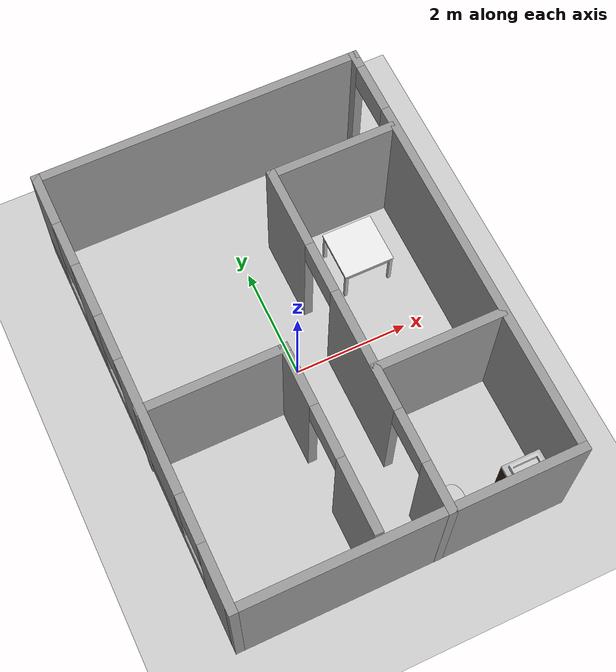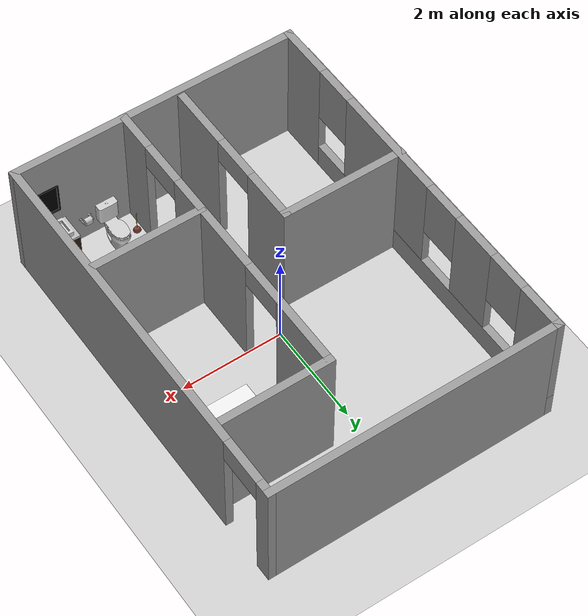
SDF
<sdf version="1.6">
 <world name="default">
  <light name="sun" type="directional">
   <pose>0 0 10 0 -0 0</pose>
   <diffuse>0.8 0.8 0.8 1</diffuse>
   <specular>0.1 0.1 0.1 1</specular>
   <attenuation>
    <range>1000</range>
    <constant>0.9</constant>
    <linear>0.01</linear>
    <quadratic>0.001</quadratic>
   </attenuation>
   <direction>-0.5 0.5 -1</direction>
  </light>
  <model name="ground_plane">
   <static>1</static>
   <link name="link">
    <collision name="collision">
     <geometry><plane><normal>0 0 1</normal><size>100 100</size></plane></geometry>
     <surface><friction><ode><mu>100</mu><mu2>50</mu2></ode></friction></surface>
    </collision>
    <visual name="visual">
     <cast_shadows>0</cast_shadows>
     <geometry><plane><normal>0 0 1</normal><size>100 100</size></plane></geometry>
     <material>
      <script><uri>file://media/materials/scripts/gazebo.material</uri><name>Gazebo/Grey</name></script>
     </material>
    </visual>
   </link>
  </model>
  <gravity>0 0 -9.8</gravity>
  <magnetic_field>6e-06 2.3e-05 -4.2e-05</magnetic_field>
  <atmosphere type="adiabatic"/>
  <physics name="default_physics" default="0" type="ode">
   <max_step_size>0.001</max_step_size>
   <real_time_factor>1</real_time_factor>
   <real_time_update_rate>1000</real_time_update_rate>
  </physics>
  <scene><ambient>0.4 0.4 0.4 1</ambient><background>0.7 0.7 0.7 1</background><shadows>1</shadows></scene>
  <spherical_coordinates>
   <surface_model>EARTH_WGS84</surface_model>
   <latitude_deg>0</latitude_deg>
   <longitude_deg>0</longitude_deg>
   <elevation>0</elevation>
   <heading_deg>0</heading_deg>
  </spherical_coordinates>
  <model name="test_apartment">
   <link name="Wall_0">
    <collision name="Wall_0_Collision">
     <geometry><box><size>5.75 0.15 2.5</size></box></geometry>
     <pose>0 0 1.25 0 -0 0</pose>
    </collision>
    <visual name="Wall_0_Visual">
     <pose>0 0 1.25 0 -0 0</pose>
     <geometry><box><size>5.75 0.15 2.5</size></box></geometry>
     <material>
      <script><uri>file://media/materials/scripts/gazebo.material</uri><name>Gazebo/Grey</name></script>
      <ambient>1 1 1 1</ambient>
     </material>
    </visual>
    <pose>0.010057 3.80146 0 0 -0 0</pose>
   </link>
   <link name="Wall_1">
    <pose>2.81006 0.001465 0 0 0 -1.5708</pose>
    <visual name="Wall_1_Visual_0">
     <pose>-3.71051 0 1.25 0 -0 0</pose>
     <geometry><box><size>0.328975 0.15 2.5</size></box></geometry>
     <material>
      <script><uri>file://media/materials/scripts/gazebo.material</uri><name>Gazebo/Grey</name></script>
      <ambient>1 1 1 1</ambient>
     </material>
    </visual>
    <collision name="Wall_1_Collision_0">
     <geometry><box><size>0.328975 0.15 2.5</size></box></geometry>
     <pose>-3.71051 0 1.25 0 -0 0</pose>
    </collision>
    <visual name="Wall_1_Visual_1">
     <pose>0.614488 0 1.25 0 -0 0</pose>
     <geometry><box><size>6.52102 0.15 2.5</size></box></geometry>
     <material>
      <script><uri>file://media/materials/scripts/gazebo.material</uri><name>Gazebo/Grey</name></script>
      <ambient>1 1 1 1</ambient>
     </material>
    </visual>
    <collision name="Wall_1_Collision_1">
     <geometry><box><size>6.52102 0.15 2.5</size></box></geometry>
     <pose>0.614488 0 1.25 0 -0 0</pose>
    </collision>
    <visual name="Wall_1_Visual_2">
     <pose>-3.09603 0 2.25 0 -0 0</pose>
     <geometry><box><size>0.9 0.15 0.5</size></box></geometry>
     <material>
      <script><uri>file://media/materials/scripts/gazebo.material</uri><name>Gazebo/Grey</name></script>
      <ambient>1 1 1 1</ambient>
     </material>
    </visual>
    <collision name="Wall_1_Collision_2">
     <geometry><box><size>0.9 0.15 0.5</size></box></geometry>
     <pose>-3.09603 0 2.25 0 -0 0</pose>
    </collision>
   </link>
   <link name="Wall_11">
    <collision name="Wall_11_Collision">
     <geometry><box><size>2.25 0.15 2.5</size></box></geometry>
     <pose>0 0 1.25 0 -0 0</pose>
    </collision>
    <visual name="Wall_11_Visual">
     <pose>0 0 1.25 0 -0 0</pose>
     <geometry><box><size>2.25 0.15 2.5</size></box></geometry>
     <material>
      <script><uri>file://media/materials/scripts/gazebo.material</uri><name>Gazebo/Grey</name></script>
      <ambient>1 1 1 1</ambient>
     </material>
    </visual>
    <pose>1.69948 -1.38784 0 0 -0 0</pose>
   </link>
   <link name="Wall_2">
    <collision name="Wall_2_Collision">
     <geometry><box><size>5.75 0.15 2.5</size></box></geometry>
     <pose>0 0 1.25 0 -0 0</pose>
    </collision>
    <visual name="Wall_2_Visual">
     <pose>0 0 1.25 0 -0 0</pose>
     <geometry><box><size>5.75 0.15 2.5</size></box></geometry>
     <material>
      <script><uri>file://media/materials/scripts/gazebo.material</uri><name>Gazebo/Grey</name></script>
      <ambient>1 1 1 1</ambient>
     </material>
    </visual>
    <pose>0.010057 -3.79854 0 0 -0 3.14159</pose>
   </link>
   <link name="Wall_3">
    <pose>-2.78994 0.001465 0 0 -0 1.5708</pose>
    <visual name="Wall_3_Visual_0">
     <pose>-3.31488 0 1.25 0 -0 0</pose>
     <geometry><box><size>1.12025 0.15 2.5</size></box></geometry>
     <material>
      <script><uri>file://media/materials/scripts/gazebo.material</uri><name>Gazebo/Grey</name></script>
      <ambient>1 1 1 1</ambient>
     </material>
    </visual>
    <collision name="Wall_3_Collision_0">
     <geometry><box><size>1.12025 0.15 2.5</size></box></geometry>
     <pose>-3.31488 0 1.25 0 -0 0</pose>
    </collision>
    <visual name="Wall_3_Visual_1">
     <pose>0.560124 0 0.25 0 -0 0</pose>
     <geometry><box><size>6.62975 0.15 0.5</size></box></geometry>
     <material>
      <script><uri>file://media/materials/scripts/gazebo.material</uri><name>Gazebo/Grey</name></script>
      <ambient>1 1 1 1</ambient>
     </material>
    </visual>
    <collision name="Wall_3_Collision_1">
     <geometry><box><size>6.62975 0.15 0.5</size></box></geometry>
     <pose>0.560124 0 0.25 0 -0 0</pose>
    </collision>
    <visual name="Wall_3_Visual_2">
     <pose>-0.795951 0 1.5 0 -0 0</pose>
     <geometry><box><size>2.3176 0.15 2</size></box></geometry>
     <material>
      <script><uri>file://media/materials/scripts/gazebo.material</uri><name>Gazebo/Grey</name></script>
      <ambient>1 1 1 1</ambient>
     </material>
    </visual>
    <collision name="Wall_3_Collision_2">
     <geometry><box><size>2.3176 0.15 2</size></box></geometry>
     <pose>-0.795951 0 1.5 0 -0 0</pose>
    </collision>
    <visual name="Wall_3_Visual_3">
     <pose>1.63779 0 1.5 0 -0 0</pose>
     <geometry><box><size>0.949881 0.15 2</size></box></geometry>
     <material>
      <script><uri>file://media/materials/scripts/gazebo.material</uri><name>Gazebo/Grey</name></script>
      <ambient>1 1 1 1</ambient>
     </material>
    </visual>
    <collision name="Wall_3_Collision_3">
     <geometry><box><size>0.949881 0.15 2</size></box></geometry>
     <pose>1.63779 0 1.5 0 -0 0</pose>
    </collision>
    <visual name="Wall_3_Visual_4">
     <pose>3.39387 0 1.5 0 -0 0</pose>
     <geometry><box><size>0.962269 0.15 2</size></box></geometry>
     <material>
      <script><uri>file://media/materials/scripts/gazebo.material</uri><name>Gazebo/Grey</name></script>
      <ambient>1 1 1 1</ambient>
     </material>
    </visual>
    <collision name="Wall_3_Collision_4">
     <geometry><box><size>0.962269 0.15 2</size></box></geometry>
     <pose>3.39387 0 1.5 0 -0 0</pose>
    </collision>
    <visual name="Wall_3_Visual_5">
     <pose>-2.35475 0 1.9 0 -0 0</pose>
     <geometry><box><size>0.8 0.15 1.2</size></box></geometry>
     <material>
      <script><uri>file://media/materials/scripts/gazebo.material</uri><name>Gazebo/Grey</name></script>
      <ambient>1 1 1 1</ambient>
     </material>
    </visual>
    <collision name="Wall_3_Collision_5">
     <geometry><box><size>0.8 0.15 1.2</size></box></geometry>
     <pose>-2.35475 0 1.9 0 -0 0</pose>
    </collision>
    <visual name="Wall_3_Visual_6">
     <pose>0.762851 0 1.9 0 -0 0</pose>
     <geometry><box><size>0.8 0.15 1.2</size></box></geometry>
     <material>
      <script><uri>file://media/materials/scripts/gazebo.material</uri><name>Gazebo/Grey</name></script>
      <ambient>1 1 1 1</ambient>
     </material>
    </visual>
    <collision name="Wall_3_Collision_6">
     <geometry><box><size>0.8 0.15 1.2</size></box></geometry>
     <pose>0.762851 0 1.9 0 -0 0</pose>
    </collision>
    <visual name="Wall_3_Visual_7">
     <pose>2.51273 0 1.9 0 -0 0</pose>
     <geometry><box><size>0.8 0.15 1.2</size></box></geometry>
     <material>
      <script><uri>file://media/materials/scripts/gazebo.material</uri><name>Gazebo/Grey</name></script>
      <ambient>1 1 1 1</ambient>
     </material>
    </visual>
    <collision name="Wall_3_Collision_7">
     <geometry><box><size>0.8 0.15 1.2</size></box></geometry>
     <pose>2.51273 0 1.9 0 -0 0</pose>
    </collision>
   </link>
   <link name="Wall_5">
    <collision name="Wall_5_Collision">
     <geometry><box><size>2.5 0.15 2.5</size></box></geometry>
     <pose>0 0 1.25 0 -0 0</pose>
    </collision>
    <visual name="Wall_5_Visual">
     <pose>0 0 1.25 0 -0 0</pose>
     <geometry><box><size>2.5 0.15 2.5</size></box></geometry>
     <material>
      <script><uri>file://media/materials/scripts/gazebo.material</uri><name>Gazebo/Grey</name></script>
      <ambient>1 1 1 1</ambient>
     </material>
    </visual>
    <pose>-1.63506 -0.522953 0 0 -0 0</pose>
   </link>
   <link name="Wall_6">
    <pose>-0.460057 -2.07295 0 0 0 -1.5708</pose>
    <visual name="Wall_6_Visual_0">
     <pose>-1.07835 0 1.25 0 -0 0</pose>
     <geometry><box><size>1.09329 0.15 2.5</size></box></geometry>
     <material>
      <script><uri>file://media/materials/scripts/gazebo.material</uri><name>Gazebo/Grey</name></script>
      <ambient>1 1 1 1</ambient>
     </material>
    </visual>
    <collision name="Wall_6_Collision_0">
     <geometry><box><size>1.09329 0.15 2.5</size></box></geometry>
     <pose>-1.07835 0 1.25 0 -0 0</pose>
    </collision>
    <visual name="Wall_6_Visual_1">
     <pose>0.996645 0 1.25 0 -0 0</pose>
     <geometry><box><size>1.25671 0.15 2.5</size></box></geometry>
     <material>
      <script><uri>file://media/materials/scripts/gazebo.material</uri><name>Gazebo/Grey</name></script>
      <ambient>1 1 1 1</ambient>
     </material>
    </visual>
    <collision name="Wall_6_Collision_1">
     <geometry><box><size>1.25671 0.15 2.5</size></box></geometry>
     <pose>0.996645 0 1.25 0 -0 0</pose>
    </collision>
    <visual name="Wall_6_Visual_2">
     <pose>-0.081709 0 2.25 0 -0 0</pose>
     <geometry><box><size>0.9 0.15 0.5</size></box></geometry>
     <material>
      <script><uri>file://media/materials/scripts/gazebo.material</uri><name>Gazebo/Grey</name></script>
      <ambient>1 1 1 1</ambient>
     </material>
    </visual>
    <collision name="Wall_6_Collision_2">
     <geometry><box><size>0.9 0.15 0.5</size></box></geometry>
     <pose>-0.081709 0 2.25 0 -0 0</pose>
    </collision>
   </link>
   <link name="Wall_8">
    <pose>0.629364 -0.751465 0 0 -0 1.5708</pose>
    <visual name="Wall_8_Visual_0">
     <pose>-2.69904 0 1.25 0 -0 0</pose>
     <geometry><box><size>0.851928 0.15 2.5</size></box></geometry>
     <material>
      <script><uri>file://media/materials/scripts/gazebo.material</uri><name>Gazebo/Grey</name></script>
      <ambient>1 1 1 1</ambient>
     </material>
    </visual>
    <collision name="Wall_8_Collision_0">
     <geometry><box><size>0.851928 0.15 2.5</size></box></geometry>
     <pose>-2.69904 0 1.25 0 -0 0</pose>
    </collision>
    <visual name="Wall_8_Visual_1">
     <pose>-0.304497 0 1.25 0 -0 0</pose>
     <geometry><box><size>2.13715 0.15 2.5</size></box></geometry>
     <material>
      <script><uri>file://media/materials/scripts/gazebo.material</uri><name>Gazebo/Grey</name></script>
      <ambient>1 1 1 1</ambient>
     </material>
    </visual>
    <collision name="Wall_8_Collision_1">
     <geometry><box><size>2.13715 0.15 2.5</size></box></geometry>
     <pose>-0.304497 0 1.25 0 -0 0</pose>
    </collision>
    <visual name="Wall_8_Visual_2">
     <pose>2.39454 0 1.25 0 -0 0</pose>
     <geometry><box><size>1.46092 0.15 2.5</size></box></geometry>
     <material>
      <script><uri>file://media/materials/scripts/gazebo.material</uri><name>Gazebo/Grey</name></script>
      <ambient>1 1 1 1</ambient>
     </material>
    </visual>
    <collision name="Wall_8_Collision_2">
     <geometry><box><size>1.46092 0.15 2.5</size></box></geometry>
     <pose>2.39454 0 1.25 0 -0 0</pose>
    </collision>
    <visual name="Wall_8_Visual_3">
     <pose>-1.82307 0 2.25 0 -0 0</pose>
     <geometry><box><size>0.9 0.15 0.5</size></box></geometry>
     <material>
      <script><uri>file://media/materials/scripts/gazebo.material</uri><name>Gazebo/Grey</name></script>
      <ambient>1 1 1 1</ambient>
     </material>
    </visual>
    <collision name="Wall_8_Collision_3">
     <geometry><box><size>0.9 0.15 0.5</size></box></geometry>
     <pose>-1.82307 0 2.25 0 -0 0</pose>
    </collision>
    <visual name="Wall_8_Visual_4">
     <pose>1.21408 0 2.25 0 -0 0</pose>
     <geometry><box><size>0.9 0.15 0.5</size></box></geometry>
     <material>
      <script><uri>file://media/materials/scripts/gazebo.material</uri><name>Gazebo/Grey</name></script>
      <ambient>1 1 1 1</ambient>
     </material>
    </visual>
    <collision name="Wall_8_Collision_4">
     <geometry><box><size>0.9 0.15 0.5</size></box></geometry>
     <pose>1.21408 0 2.25 0 -0 0</pose>
    </collision>
   </link>
   <link name="Wall_9">
    <collision name="Wall_9_Collision">
     <geometry><box><size>2.25 0.15 2.5</size></box></geometry>
     <pose>0 0 1.25 0 -0 0</pose>
    </collision>
    <visual name="Wall_9_Visual">
     <pose>0 0 1.25 0 -0 0</pose>
     <geometry><box><size>2.25 0.15 2.5</size></box></geometry>
     <material>
      <script><uri>file://media/materials/scripts/gazebo.material</uri><name>Gazebo/Grey</name></script>
      <ambient>1 1 1 1</ambient>
     </material>
    </visual>
    <pose>1.67936 2.29854 0 0 -0 0</pose>
   </link>
   <static>1</static>
  </model>
  <model name="table_ikea_bjursta">
   <link name="table_top_link">
    <inertial>
     <pose>0 0 0.338095 0 -0 0</pose>
     <mass>21</mass>
     <inertia><ixx>3.4229</ixx><ixy>0</ixy><ixz>0</ixz><iyy>3.4229</iyy><iyz>0</iyz><izz>4.82335</izz></inertia>
    </inertial>
    <visual name="table_top_link_visual">
     <pose>0 0 0.72 0 -0 0</pose>
     <geometry><box><size>0.9 0.9 0.04</size></box></geometry>
     <material>
      <script><name>Gazebo/White</name><uri>file://media/materials/scripts/gazebo.material</uri></script>
      <ambient>1 1 1 1</ambient>
      <diffuse>1 1 1 1</diffuse>
      <specular>0 0 0 1</specular>
      <emissive>0 0 0 1</emissive>
     </material>
    </visual>
    <visual name="table_top_link_fixed_joint_lump__lath_left_back_link_visual_1">
     <pose>-0.43 0 0.665 0 -0 0</pose>
     <geometry><box><size>0.02 0.77 0.07</size></box></geometry>
    </visual>
    <visual name="table_top_link_fixed_joint_lump__lath_left_front_link_visual_2">
     <pose>0.43 0 0.665 0 -0 0</pose>
     <geometry><box><size>0.02 0.77 0.07</size></box></geometry>
    </visual>
    <visual name="table_top_link_fixed_joint_lump__lath_right_back_link_visual_3">
     <pose>0 -0.43 0.665 0 -0 0</pose>
     <geometry><box><size>0.77 0.02 0.07</size></box></geometry>
    </visual>
    <visual name="table_top_link_fixed_joint_lump__lath_right_front_link_visual_4">
     <pose>0 0.43 0.665 0 -0 0</pose>
     <geometry><box><size>0.77 0.02 0.07</size></box></geometry>
    </visual>
    <visual name="table_top_link_fixed_joint_lump__leg_left_back_link_visual_5">
     <pose>-0.4125 0.4125 0.37 0 -0 0</pose>
     <geometry><box><size>0.055 0.055 0.7</size></box></geometry>
    </visual>
    <visual name="table_top_link_fixed_joint_lump__leg_left_front_link_visual_6">
     <pose>0.4125 0.4125 0.37 0 -0 0</pose>
     <geometry><box><size>0.055 0.055 0.7</size></box></geometry>
    </visual>
    <visual name="table_top_link_fixed_joint_lump__leg_right_back_link_visual_7">
     <pose>-0.4125 -0.4125 0.37 0 -0 0</pose>
     <geometry><box><size>0.055 0.055 0.7</size></box></geometry>
    </visual>
    <visual name="table_top_link_fixed_joint_lump__leg_right_front_link_visual_8">
     <pose>0.4125 -0.4125 0.37 0 -0 0</pose>
     <geometry><box><size>0.055 0.055 0.7</size></box></geometry>
    </visual>
    <collision name="table_top_link_collision">
     <pose>0 0 0.72 0 -0 0</pose>
     <geometry><box><size>0.9 0.9 0.04</size></box></geometry>
     <surface>
      <friction>
       <ode><mu>50</mu><mu2>50</mu2><fdir1>0 0 0</fdir1><slip1>0</slip1><slip2>0</slip2></ode>
       <torsional>
        <coefficient>1</coefficient>
        <patch_radius>0</patch_radius>
        <surface_radius>0</surface_radius>
        <use_patch_radius>1</use_patch_radius>
        <ode><slip>0</slip></ode>
       </torsional>
      </friction>
      <bounce><restitution_coefficient>0</restitution_coefficient><threshold>1e+06</threshold></bounce>
      <contact>
       <collide_without_contact>0</collide_without_contact>
       <collide_without_contact_bitmask>1</collide_without_contact_bitmask>
       <collide_bitmask>1</collide_bitmask>
       <ode>
        <soft_cfm>0</soft_cfm>
        <soft_erp>0.2</soft_erp>
        <kp>1e+06</kp>
        <kd>1</kd>
        <max_vel>0.01</max_vel>
        <min_depth>0</min_depth>
       </ode>
       <bullet>
        <split_impulse>1</split_impulse>
        <split_impulse_penetration_threshold>-0.01</split_impulse_penetration_threshold>
        <soft_cfm>0</soft_cfm>
        <soft_erp>0.2</soft_erp>
        <kp>1e+06</kp>
        <kd>1</kd>
       </bullet>
      </contact>
     </surface>
    </collision>
    <collision name="table_top_link_fixed_joint_lump__lath_left_front_link_collision_2">
     <pose>0.43 0 0.665 0 -0 0</pose>
     <geometry><box><size>0.02 0.77 0.07</size></box></geometry>
     <surface>
      <friction>
       <ode><mu>1</mu><mu2>1</mu2><fdir1>0 0 0</fdir1><slip1>0</slip1><slip2>0</slip2></ode>
       <torsional>
        <coefficient>1</coefficient>
        <patch_radius>0</patch_radius>
        <surface_radius>0</surface_radius>
        <use_patch_radius>1</use_patch_radius>
        <ode><slip>0</slip></ode>
       </torsional>
      </friction>
      <bounce><restitution_coefficient>0</restitution_coefficient><threshold>1e+06</threshold></bounce>
      <contact>
       <collide_without_contact>0</collide_without_contact>
       <collide_without_contact_bitmask>1</collide_without_contact_bitmask>
       <collide_bitmask>1</collide_bitmask>
       <ode>
        <soft_cfm>0</soft_cfm>
        <soft_erp>0.2</soft_erp>
        <kp>1e+13</kp>
        <kd>1</kd>
        <max_vel>0.01</max_vel>
        <min_depth>0</min_depth>
       </ode>
       <bullet>
        <split_impulse>1</split_impulse>
        <split_impulse_penetration_threshold>-0.01</split_impulse_penetration_threshold>
        <soft_cfm>0</soft_cfm>
        <soft_erp>0.2</soft_erp>
        <kp>1e+13</kp>
        <kd>1</kd>
       </bullet>
      </contact>
     </surface>
    </collision>
    <collision name="table_top_link_fixed_joint_lump__lath_left_back_link_collision_1">
     <pose>-0.43 0 0.665 0 -0 0</pose>
     <geometry><box><size>0.02 0.77 0.07</size></box></geometry>
     <surface>
      <friction>
       <ode><mu>1</mu><mu2>1</mu2><fdir1>0 0 0</fdir1><slip1>0</slip1><slip2>0</slip2></ode>
       <torsional>
        <coefficient>1</coefficient>
        <patch_radius>0</patch_radius>
        <surface_radius>0</surface_radius>
        <use_patch_radius>1</use_patch_radius>
        <ode><slip>0</slip></ode>
       </torsional>
      </friction>
      <bounce><restitution_coefficient>0</restitution_coefficient><threshold>1e+06</threshold></bounce>
      <contact>
       <collide_without_contact>0</collide_without_contact>
       <collide_without_contact_bitmask>1</collide_without_contact_bitmask>
       <collide_bitmask>1</collide_bitmask>
       <ode>
        <soft_cfm>0</soft_cfm>
        <soft_erp>0.2</soft_erp>
        <kp>1e+13</kp>
        <kd>1</kd>
        <max_vel>0.01</max_vel>
        <min_depth>0</min_depth>
       </ode>
       <bullet>
        <split_impulse>1</split_impulse>
        <split_impulse_penetration_threshold>-0.01</split_impulse_penetration_threshold>
        <soft_cfm>0</soft_cfm>
        <soft_erp>0.2</soft_erp>
        <kp>1e+13</kp>
        <kd>1</kd>
       </bullet>
      </contact>
     </surface>
    </collision>
    <collision name="table_top_link_fixed_joint_lump__lath_right_front_link_collision_4">
     <pose>0 0.43 0.665 0 -0 0</pose>
     <geometry><box><size>0.77 0.02 0.07</size></box></geometry>
     <surface>
      <friction>
       <ode><mu>1</mu><mu2>1</mu2><fdir1>0 0 0</fdir1><slip1>0</slip1><slip2>0</slip2></ode>
       <torsional>
        <coefficient>1</coefficient>
        <patch_radius>0</patch_radius>
        <surface_radius>0</surface_radius>
        <use_patch_radius>1</use_patch_radius>
        <ode><slip>0</slip></ode>
       </torsional>
      </friction>
      <bounce><restitution_coefficient>0</restitution_coefficient><threshold>1e+06</threshold></bounce>
      <contact>
       <collide_without_contact>0</collide_without_contact>
       <collide_without_contact_bitmask>1</collide_without_contact_bitmask>
       <collide_bitmask>1</collide_bitmask>
       <ode>
        <soft_cfm>0</soft_cfm>
        <soft_erp>0.2</soft_erp>
        <kp>1e+13</kp>
        <kd>1</kd>
        <max_vel>0.01</max_vel>
        <min_depth>0</min_depth>
       </ode>
       <bullet>
        <split_impulse>1</split_impulse>
        <split_impulse_penetration_threshold>-0.01</split_impulse_penetration_threshold>
        <soft_cfm>0</soft_cfm>
        <soft_erp>0.2</soft_erp>
        <kp>1e+13</kp>
        <kd>1</kd>
       </bullet>
      </contact>
     </surface>
    </collision>
    <collision name="table_top_link_fixed_joint_lump__lath_right_back_link_collision_3">
     <pose>0 -0.43 0.665 0 -0 0</pose>
     <geometry><box><size>0.77 0.02 0.07</size></box></geometry>
     <surface>
      <friction>
       <ode><mu>1</mu><mu2>1</mu2><fdir1>0 0 0</fdir1><slip1>0</slip1><slip2>0</slip2></ode>
       <torsional>
        <coefficient>1</coefficient>
        <patch_radius>0</patch_radius>
        <surface_radius>0</surface_radius>
        <use_patch_radius>1</use_patch_radius>
        <ode><slip>0</slip></ode>
       </torsional>
      </friction>
      <bounce><restitution_coefficient>0</restitution_coefficient><threshold>1e+06</threshold></bounce>
      <contact>
       <collide_without_contact>0</collide_without_contact>
       <collide_without_contact_bitmask>1</collide_without_contact_bitmask>
       <collide_bitmask>1</collide_bitmask>
       <ode>
        <soft_cfm>0</soft_cfm>
        <soft_erp>0.2</soft_erp>
        <kp>1e+13</kp>
        <kd>1</kd>
        <max_vel>0.01</max_vel>
        <min_depth>0</min_depth>
       </ode>
       <bullet>
        <split_impulse>1</split_impulse>
        <split_impulse_penetration_threshold>-0.01</split_impulse_penetration_threshold>
        <soft_cfm>0</soft_cfm>
        <soft_erp>0.2</soft_erp>
        <kp>1e+13</kp>
        <kd>1</kd>
       </bullet>
      </contact>
     </surface>
    </collision>
    <collision name="table_top_link_fixed_joint_lump__leg_left_back_link_collision_5">
     <pose>-0.4125 0.4125 0.37 0 -0 0</pose>
     <geometry><box><size>0.055 0.055 0.7</size></box></geometry>
     <surface>
      <friction>
       <ode><mu>1</mu><mu2>1</mu2><fdir1>0 0 0</fdir1><slip1>0</slip1><slip2>0</slip2></ode>
       <torsional>
        <coefficient>1</coefficient>
        <patch_radius>0</patch_radius>
        <surface_radius>0</surface_radius>
        <use_patch_radius>1</use_patch_radius>
        <ode><slip>0</slip></ode>
       </torsional>
      </friction>
      <bounce><restitution_coefficient>0</restitution_coefficient><threshold>1e+06</threshold></bounce>
      <contact>
       <collide_without_contact>0</collide_without_contact>
       <collide_without_contact_bitmask>1</collide_without_contact_bitmask>
       <collide_bitmask>1</collide_bitmask>
       <ode>
        <soft_cfm>0</soft_cfm>
        <soft_erp>0.2</soft_erp>
        <kp>1e+13</kp>
        <kd>1</kd>
        <max_vel>0.01</max_vel>
        <min_depth>0</min_depth>
       </ode>
       <bullet>
        <split_impulse>1</split_impulse>
        <split_impulse_penetration_threshold>-0.01</split_impulse_penetration_threshold>
        <soft_cfm>0</soft_cfm>
        <soft_erp>0.2</soft_erp>
        <kp>1e+13</kp>
        <kd>1</kd>
       </bullet>
      </contact>
     </surface>
    </collision>
    <collision name="table_top_link_fixed_joint_lump__leg_right_back_link_collision_7">
     <pose>-0.4125 -0.4125 0.37 0 -0 0</pose>
     <geometry><box><size>0.055 0.055 0.7</size></box></geometry>
     <surface>
      <friction>
       <ode><mu>1</mu><mu2>1</mu2><fdir1>0 0 0</fdir1><slip1>0</slip1><slip2>0</slip2></ode>
       <torsional>
        <coefficient>1</coefficient>
        <patch_radius>0</patch_radius>
        <surface_radius>0</surface_radius>
        <use_patch_radius>1</use_patch_radius>
        <ode><slip>0</slip></ode>
       </torsional>
      </friction>
      <bounce><restitution_coefficient>0</restitution_coefficient><threshold>1e+06</threshold></bounce>
      <contact>
       <collide_without_contact>0</collide_without_contact>
       <collide_without_contact_bitmask>1</collide_without_contact_bitmask>
       <collide_bitmask>1</collide_bitmask>
       <ode>
        <soft_cfm>0</soft_cfm>
        <soft_erp>0.2</soft_erp>
        <kp>1e+13</kp>
        <kd>1</kd>
        <max_vel>0.01</max_vel>
        <min_depth>0</min_depth>
       </ode>
       <bullet>
        <split_impulse>1</split_impulse>
        <split_impulse_penetration_threshold>-0.01</split_impulse_penetration_threshold>
        <soft_cfm>0</soft_cfm>
        <soft_erp>0.2</soft_erp>
        <kp>1e+13</kp>
        <kd>1</kd>
       </bullet>
      </contact>
     </surface>
    </collision>
    <collision name="table_top_link_fixed_joint_lump__leg_left_front_link_collision_6">
     <pose>0.4125 0.4125 0.37 0 -0 0</pose>
     <geometry><box><size>0.055 0.055 0.7</size></box></geometry>
     <surface>
      <friction>
       <ode><mu>1</mu><mu2>1</mu2><fdir1>0 0 0</fdir1><slip1>0</slip1><slip2>0</slip2></ode>
       <torsional>
        <coefficient>1</coefficient>
        <patch_radius>0</patch_radius>
        <surface_radius>0</surface_radius>
        <use_patch_radius>1</use_patch_radius>
        <ode><slip>0</slip></ode>
       </torsional>
      </friction>
      <bounce><restitution_coefficient>0</restitution_coefficient><threshold>1e+06</threshold></bounce>
      <contact>
       <collide_without_contact>0</collide_without_contact>
       <collide_without_contact_bitmask>1</collide_without_contact_bitmask>
       <collide_bitmask>1</collide_bitmask>
       <ode>
        <soft_cfm>0</soft_cfm>
        <soft_erp>0.2</soft_erp>
        <kp>1e+13</kp>
        <kd>1</kd>
        <max_vel>0.01</max_vel>
        <min_depth>0</min_depth>
       </ode>
       <bullet>
        <split_impulse>1</split_impulse>
        <split_impulse_penetration_threshold>-0.01</split_impulse_penetration_threshold>
        <soft_cfm>0</soft_cfm>
        <soft_erp>0.2</soft_erp>
        <kp>1e+13</kp>
        <kd>1</kd>
       </bullet>
      </contact>
     </surface>
    </collision>
    <collision name="table_top_link_fixed_joint_lump__leg_right_front_link_collision_8">
     <pose>0.4125 -0.4125 0.37 0 -0 0</pose>
     <geometry><box><size>0.055 0.055 0.7</size></box></geometry>
     <surface>
      <friction>
       <ode><mu>1</mu><mu2>1</mu2><fdir1>0 0 0</fdir1><slip1>0</slip1><slip2>0</slip2></ode>
       <torsional>
        <coefficient>1</coefficient>
        <patch_radius>0</patch_radius>
        <surface_radius>0</surface_radius>
        <use_patch_radius>1</use_patch_radius>
        <ode><slip>0</slip></ode>
       </torsional>
      </friction>
      <bounce><restitution_coefficient>0</restitution_coefficient><threshold>1e+06</threshold></bounce>
      <contact>
       <collide_without_contact>0</collide_without_contact>
       <collide_without_contact_bitmask>1</collide_without_contact_bitmask>
       <collide_bitmask>1</collide_bitmask>
       <ode>
        <soft_cfm>0</soft_cfm>
        <soft_erp>0.2</soft_erp>
        <kp>1e+13</kp>
        <kd>1</kd>
        <max_vel>0.01</max_vel>
        <min_depth>0</min_depth>
       </ode>
       <bullet>
        <split_impulse>1</split_impulse>
        <split_impulse_penetration_threshold>-0.01</split_impulse_penetration_threshold>
        <soft_cfm>0</soft_cfm>
        <soft_erp>0.2</soft_erp>
        <kp>1e+13</kp>
        <kd>1</kd>
       </bullet>
      </contact>
     </surface>
    </collision>
   </link>
   <static>0</static>
   <pose>1.77236 1.38154 -0.020005 -4e-06 9e-06 7e-06</pose>
  </model>
  <model name="bathroom_set">
   <link name="link">
    <collision name="collision">
     <geometry><mesh><uri>model://bathroom_set/meshes/model.dae</uri><scale>1 1 1</scale></mesh></geometry>
    </collision>
    <visual name="visual">
     <geometry><mesh><uri>model://bathroom_set/meshes/model.dae</uri><scale>1 1 1</scale></mesh></geometry>
    </visual>
    <inertial>
     <inertia><ixx>1</ixx><ixy>0</ixy><ixz>0</ixz><iyy>1</iyy><iyz>0</iyz><izz>1</izz></inertia>
     <mass>1</mass>
    </inertial>
   </link>
   <pose>1.18786 -3.31918 1e-06 -2.3e-05 -1.6e-05 1.57109</pose>
  </model>
 </world>
</sdf>
